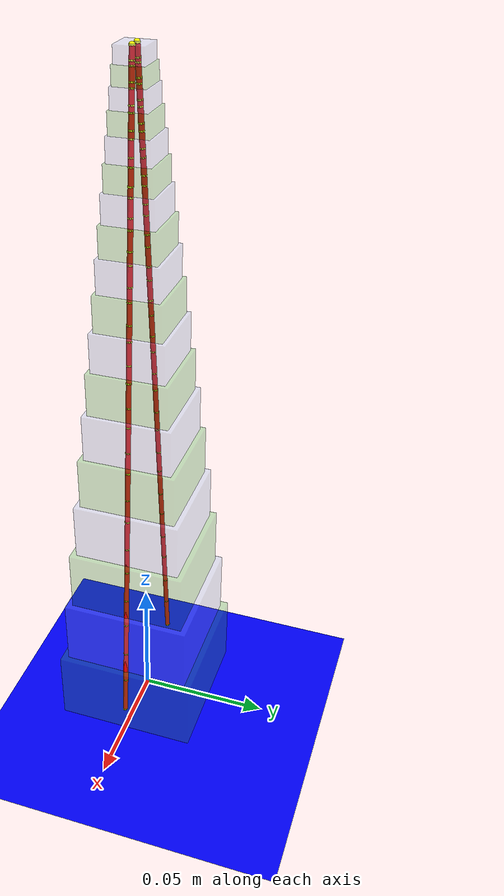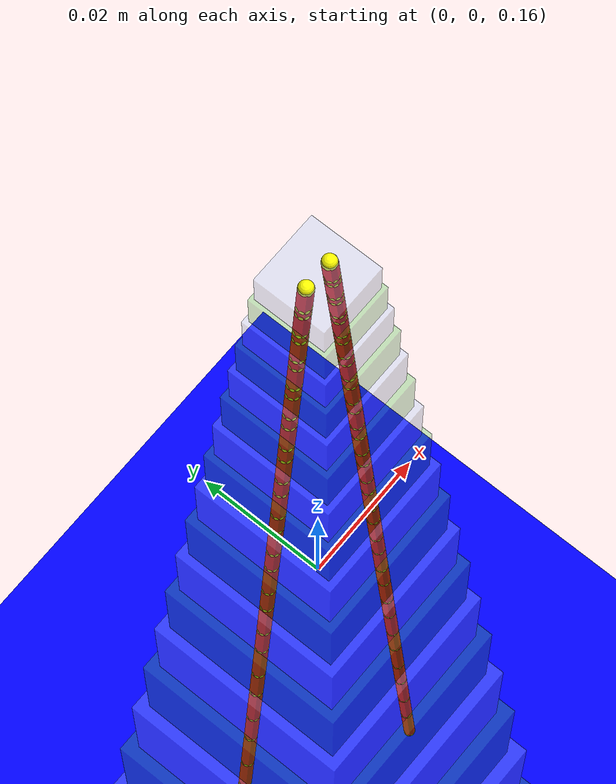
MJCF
<mujoco model="spiral_chain">
  <compiler/>
  <option timestep="0.005" gravity="0 0 -9.81" impratio="10" iterations="50"/>
  <default>
    <joint damping="0.2" stiffness="0.01" limited="true" range="-25.662747418161974 25.662747418161974" solimplimit="0.9 0.95 0.001" solreflimit="0.02 0.5" armature="0.01"/>
    <geom contype="1" conaffinity="0"/>
  </default>
  <worldbody>
    <body name="base" pos="0 0 0">
      <geom type="plane" size="2 2 0.1" rgba="0 0 1 0.6" contype="2" conaffinity="1"/>
      <!-- Der eigentliche Ketten-Root wird hier als Kind erzeugt -->
      <body name="seg_17" pos="0 0 0">
        <joint name="j_17" type="hinge" axis="0 1 0" pos="0 0 0" stiffness="0.05" damping="0.05" limited="true" range="-30.562747418161972 30.562747418161972" solimplimit="0.9 0.95 0.001" solreflimit="0.01 0.5"/>

        <!-- sichtbare, kollisionslose box-->
        <geom name="g_17" type="box"
              size="0.0271576 0.0271576 0.0147807"
              pos="0 0 0.0147807"
              rgba="0.2 0.7 0.2 0.3" contype="1" conaffinity="0" density="1100"/>

        <!-- Tendon-Sites: unten (in) / oben (out) auf äußerster Kante ±x -->
        <site name="site_in_17_0"  pos="0.0260474 0 0.00990682"  size="0.001" rgba="1 1 0 1"/>
        <site name="site_out_17_0" pos="0.0245672 0 0.0253007" size="0.001" rgba="1 1 0 1"/>
        <site name="site_in_17_1"  pos="-0.0260474 0 0.00990682"  size="0.001" rgba="1 1 0 1"/>
        <site name="site_out_17_1" pos="-0.0245672 0 0.0253007" size="0.001" rgba="1 1 0 1"/>

        <!-- Attachment-Punkt für das nächste Segment am Segmentende: -->
        <body name="seg_17_end" pos="0 0 0.0295615">
      <body name="seg_16" pos="0 0 0">
        <joint name="j_16" type="hinge" axis="0 1 0" pos="0 0 0" stiffness="0.05" damping="0.05" limited="true" range="-30.562747418161972 30.562747418161972" solimplimit="0.9 0.95 0.001" solreflimit="0.01 0.5"/>

        <!-- sichtbare, kollisionslose box-->
        <geom name="g_16" type="box"
              size="0.0245844 0.0245844 0.0133803"
              pos="0 0 0.0133803"
              rgba="0.6 0.75 0.95 0.3" contype="1" conaffinity="0" density="1100"/>

        <!-- Tendon-Sites: unten (in) / oben (out) auf äußerster Kante ±x -->
        <site name="site_in_16_0"  pos="0.0233053 0 0.00886387"  size="0.001" rgba="1 1 0 1"/>
        <site name="site_out_16_0" pos="0.0219505 0 0.0229536" size="0.001" rgba="1 1 0 1"/>
        <site name="site_in_16_1"  pos="-0.0233053 0 0.00886387"  size="0.001" rgba="1 1 0 1"/>
        <site name="site_out_16_1" pos="-0.0219505 0 0.0229536" size="0.001" rgba="1 1 0 1"/>

        <!-- Attachment-Punkt für das nächste Segment am Segmentende: -->
        <body name="seg_16_end" pos="0 0 0.0267606">
      <body name="seg_15" pos="0 0 0">
        <joint name="j_15" type="hinge" axis="0 1 0" pos="0 0 0" stiffness="0.05" damping="0.05" limited="true" range="-30.562747418161972 30.562747418161972" solimplimit="0.9 0.95 0.001" solreflimit="0.01 0.5"/>

        <!-- sichtbare, kollisionslose box-->
        <geom name="g_15" type="box"
              size="0.0222551 0.0222551 0.0121125"
              pos="0 0 0.0121125"
              rgba="0.2 0.7 0.2 0.3" contype="1" conaffinity="0" density="1100"/>

        <!-- Tendon-Sites: unten (in) / oben (out) auf äußerster Kante ±x -->
        <site name="site_in_15_0"  pos="0.0208229 0 0.00791974"  size="0.001" rgba="1 1 0 1"/>
        <site name="site_out_15_0" pos="0.0195816 0 0.020829" size="0.001" rgba="1 1 0 1"/>
        <site name="site_in_15_1"  pos="-0.0208229 0 0.00791974"  size="0.001" rgba="1 1 0 1"/>
        <site name="site_out_15_1" pos="-0.0195816 0 0.020829" size="0.001" rgba="1 1 0 1"/>

        <!-- Attachment-Punkt für das nächste Segment am Segmentende: -->
        <body name="seg_15_end" pos="0 0 0.024225">
      <body name="seg_14" pos="0 0 0">
        <joint name="j_14" type="hinge" axis="0 1 0" pos="0 0 0" stiffness="0.05" damping="0.05" limited="true" range="-30.562747418161972 30.562747418161972" solimplimit="0.9 0.95 0.001" solreflimit="0.01 0.5"/>

        <!-- sichtbare, kollisionslose box-->
        <geom name="g_14" type="box"
              size="0.0201465 0.0201465 0.0109649"
              pos="0 0 0.0109649"
              rgba="0.6 0.75 0.95 0.3" contype="1" conaffinity="0" density="1100"/>

        <!-- Tendon-Sites: unten (in) / oben (out) auf äußerster Kante ±x -->
        <site name="site_in_14_0"  pos="0.0185758 0 0.00706506"  size="0.001" rgba="1 1 0 1"/>
        <site name="site_out_14_0" pos="0.0174372 0 0.0189056" size="0.001" rgba="1 1 0 1"/>
        <site name="site_in_14_1"  pos="-0.0185758 0 0.00706506"  size="0.001" rgba="1 1 0 1"/>
        <site name="site_out_14_1" pos="-0.0174372 0 0.0189056" size="0.001" rgba="1 1 0 1"/>

        <!-- Attachment-Punkt für das nächste Segment am Segmentende: -->
        <body name="seg_14_end" pos="0 0 0.0219298">
      <body name="seg_13" pos="0 0 0">
        <joint name="j_13" type="hinge" axis="0 1 0" pos="0 0 0" stiffness="0.05" damping="0.05" limited="true" range="-30.562747418161972 30.562747418161972" solimplimit="0.9 0.95 0.001" solreflimit="0.01 0.5"/>

        <!-- sichtbare, kollisionslose box-->
        <geom name="g_13" type="box"
              size="0.0182376 0.0182376 0.00992598"
              pos="0 0 0.00992598"
              rgba="0.2 0.7 0.2 0.3" contype="1" conaffinity="0" density="1100"/>

        <!-- Tendon-Sites: unten (in) / oben (out) auf äußerster Kante ±x -->
        <site name="site_in_13_0"  pos="0.0165415 0 0.00629136"  size="0.001" rgba="1 1 0 1"/>
        <site name="site_out_13_0" pos="0.015496 0 0.0171644" size="0.001" rgba="1 1 0 1"/>
        <site name="site_in_13_1"  pos="-0.0165415 0 0.00629136"  size="0.001" rgba="1 1 0 1"/>
        <site name="site_out_13_1" pos="-0.015496 0 0.0171644" size="0.001" rgba="1 1 0 1"/>

        <!-- Attachment-Punkt für das nächste Segment am Segmentende: -->
        <body name="seg_13_end" pos="0 0 0.019852">
      <body name="seg_12" pos="0 0 0">
        <joint name="j_12" type="hinge" axis="0 1 0" pos="0 0 0" stiffness="0.05" damping="0.05" limited="true" range="-30.562747418161972 30.562747418161972" solimplimit="0.9 0.95 0.001" solreflimit="0.01 0.5"/>

        <!-- sichtbare, kollisionslose box-->
        <geom name="g_12" type="box"
              size="0.0165096 0.0165096 0.00898551"
              pos="0 0 0.00898551"
              rgba="0.6 0.75 0.95 0.3" contype="1" conaffinity="0" density="1100"/>

        <!-- Tendon-Sites: unten (in) / oben (out) auf äußerster Kante ±x -->
        <site name="site_in_12_0"  pos="0.0147 0 0.00559097"  size="0.001" rgba="1 1 0 1"/>
        <site name="site_out_12_0" pos="0.0137387 0 0.0155883" size="0.001" rgba="1 1 0 1"/>
        <site name="site_in_12_1"  pos="-0.0147 0 0.00559097"  size="0.001" rgba="1 1 0 1"/>
        <site name="site_out_12_1" pos="-0.0137387 0 0.0155883" size="0.001" rgba="1 1 0 1"/>

        <!-- Attachment-Punkt für das nächste Segment am Segmentende: -->
        <body name="seg_12_end" pos="0 0 0.017971">
      <body name="seg_11" pos="0 0 0">
        <joint name="j_11" type="hinge" axis="0 1 0" pos="0 0 0" stiffness="0.05" damping="0.05" limited="true" range="-30.562747418161972 30.562747418161972" solimplimit="0.9 0.95 0.001" solreflimit="0.01 0.5"/>

        <!-- sichtbare, kollisionslose box-->
        <geom name="g_11" type="box"
              size="0.0149454 0.0149454 0.00813415"
              pos="0 0 0.00813415"
              rgba="0.2 0.7 0.2 0.3" contype="1" conaffinity="0" density="1100"/>

        <!-- Tendon-Sites: unten (in) / oben (out) auf äußerster Kante ±x -->
        <site name="site_in_11_0"  pos="0.013033 0 0.00495694"  size="0.001" rgba="1 1 0 1"/>
        <site name="site_out_11_0" pos="0.012148 0 0.0141615" size="0.001" rgba="1 1 0 1"/>
        <site name="site_in_11_1"  pos="-0.013033 0 0.00495694"  size="0.001" rgba="1 1 0 1"/>
        <site name="site_out_11_1" pos="-0.012148 0 0.0141615" size="0.001" rgba="1 1 0 1"/>

        <!-- Attachment-Punkt für das nächste Segment am Segmentende: -->
        <body name="seg_11_end" pos="0 0 0.0162683">
      <body name="seg_10" pos="0 0 0">
        <joint name="j_10" type="hinge" axis="0 1 0" pos="0 0 0" stiffness="0.05" damping="0.05" limited="true" range="-30.562747418161972 30.562747418161972" solimplimit="0.9 0.95 0.001" solreflimit="0.01 0.5"/>

        <!-- sichtbare, kollisionslose box-->
        <geom name="g_10" type="box"
              size="0.0135293 0.0135293 0.00736345"
              pos="0 0 0.00736345"
              rgba="0.6 0.75 0.95 0.3" contype="1" conaffinity="0" density="1100"/>

        <!-- Tendon-Sites: unten (in) / oben (out) auf äußerster Kante ±x -->
        <site name="site_in_10_0"  pos="0.0115239 0 0.00438299"  size="0.001" rgba="1 1 0 1"/>
        <site name="site_out_10_0" pos="0.0107079 0 0.0128698" size="0.001" rgba="1 1 0 1"/>
        <site name="site_in_10_1"  pos="-0.0115239 0 0.00438299"  size="0.001" rgba="1 1 0 1"/>
        <site name="site_out_10_1" pos="-0.0107079 0 0.0128698" size="0.001" rgba="1 1 0 1"/>

        <!-- Attachment-Punkt für das nächste Segment am Segmentende: -->
        <body name="seg_10_end" pos="0 0 0.0147269">
      <body name="seg_9" pos="0 0 0">
        <joint name="j_9" type="hinge" axis="0 1 0" pos="0 0 0" stiffness="0.05" damping="0.05" limited="true" range="-30.562747418161972 30.562747418161972" solimplimit="0.9 0.95 0.001" solreflimit="0.01 0.5"/>

        <!-- sichtbare, kollisionslose box-->
        <geom name="g_9" type="box"
              size="0.0122474 0.0122474 0.00666578"
              pos="0 0 0.00666578"
              rgba="0.2 0.7 0.2 0.3" contype="1" conaffinity="0" density="1100"/>

        <!-- Tendon-Sites: unten (in) / oben (out) auf äußerster Kante ±x -->
        <site name="site_in_9_0"  pos="0.0101578 0 0.00386341"  size="0.001" rgba="1 1 0 1"/>
        <site name="site_out_9_0" pos="0.00940428 0 0.0117006" size="0.001" rgba="1 1 0 1"/>
        <site name="site_in_9_1"  pos="-0.0101578 0 0.00386341"  size="0.001" rgba="1 1 0 1"/>
        <site name="site_out_9_1" pos="-0.00940428 0 0.0117006" size="0.001" rgba="1 1 0 1"/>

        <!-- Attachment-Punkt für das nächste Segment am Segmentende: -->
        <body name="seg_9_end" pos="0 0 0.0133316">
      <body name="seg_8" pos="0 0 0">
        <joint name="j_8" type="hinge" axis="0 1 0" pos="0 0 0" stiffness="0.05" damping="0.05" limited="true" range="-30.562747418161972 30.562747418161972" solimplimit="0.9 0.95 0.001" solreflimit="0.01 0.5"/>

        <!-- sichtbare, kollisionslose box-->
        <geom name="g_8" type="box"
              size="0.011087 0.011087 0.00603421"
              pos="0 0 0.00603421"
              rgba="0.6 0.75 0.95 0.3" contype="1" conaffinity="0" density="1100"/>

        <!-- Tendon-Sites: unten (in) / oben (out) auf äußerster Kante ±x -->
        <site name="site_in_8_0"  pos="0.00892119 0 0.00339307"  size="0.001" rgba="1 1 0 1"/>
        <site name="site_out_8_0" pos="0.00822417 0 0.0106421" size="0.001" rgba="1 1 0 1"/>
        <site name="site_in_8_1"  pos="-0.00892119 0 0.00339307"  size="0.001" rgba="1 1 0 1"/>
        <site name="site_out_8_1" pos="-0.00822417 0 0.0106421" size="0.001" rgba="1 1 0 1"/>

        <!-- Attachment-Punkt für das nächste Segment am Segmentende: -->
        <body name="seg_8_end" pos="0 0 0.0120684">
      <body name="seg_7" pos="0 0 0">
        <joint name="j_7" type="hinge" axis="0 1 0" pos="0 0 0" stiffness="0.05" damping="0.05" limited="true" range="-30.562747418161972 30.562747418161972" solimplimit="0.9 0.95 0.001" solreflimit="0.01 0.5"/>

        <!-- sichtbare, kollisionslose box-->
        <geom name="g_7" type="box"
              size="0.0100365 0.0100365 0.00546248"
              pos="0 0 0.00546248"
              rgba="0.2 0.7 0.2 0.3" contype="1" conaffinity="0" density="1100"/>

        <!-- Tendon-Sites: unten (in) / oben (out) auf äußerster Kante ±x -->
        <site name="site_in_7_0"  pos="0.00780171 0 0.00296728"  size="0.001" rgba="1 1 0 1"/>
        <site name="site_out_7_0" pos="0.00715588 0 0.00968389" size="0.001" rgba="1 1 0 1"/>
        <site name="site_in_7_1"  pos="-0.00780171 0 0.00296728"  size="0.001" rgba="1 1 0 1"/>
        <site name="site_out_7_1" pos="-0.00715588 0 0.00968389" size="0.001" rgba="1 1 0 1"/>

        <!-- Attachment-Punkt für das nächste Segment am Segmentende: -->
        <body name="seg_7_end" pos="0 0 0.010925">
      <body name="seg_6" pos="0 0 0">
        <joint name="j_6" type="hinge" axis="0 1 0" pos="0 0 0" stiffness="0.05" damping="0.05" limited="true" range="-30.562747418161972 30.562747418161972" solimplimit="0.9 0.95 0.001" solreflimit="0.01 0.5"/>

        <!-- sichtbare, kollisionslose box-->
        <geom name="g_6" type="box"
              size="0.0090856 0.0090856 0.00494492"
              pos="0 0 0.00494492"
              rgba="0.6 0.75 0.95 0.3" contype="1" conaffinity="0" density="1100"/>

        <!-- Tendon-Sites: unten (in) / oben (out) auf äußerster Kante ±x -->
        <site name="site_in_6_0"  pos="0.00678829 0 0.00258184"  size="0.001" rgba="1 1 0 1"/>
        <site name="site_out_6_0" pos="0.00618881 0 0.00881649" size="0.001" rgba="1 1 0 1"/>
        <site name="site_in_6_1"  pos="-0.00678829 0 0.00258184"  size="0.001" rgba="1 1 0 1"/>
        <site name="site_out_6_1" pos="-0.00618881 0 0.00881649" size="0.001" rgba="1 1 0 1"/>

        <!-- Attachment-Punkt für das nächste Segment am Segmentende: -->
        <body name="seg_6_end" pos="0 0 0.00988983">
      <body name="seg_5" pos="0 0 0">
        <joint name="j_5" type="hinge" axis="0 1 0" pos="0 0 0" stiffness="0.05" damping="0.05" limited="true" range="-30.562747418161972 30.562747418161972" solimplimit="0.9 0.95 0.001" solreflimit="0.01 0.5"/>

        <!-- sichtbare, kollisionslose box-->
        <geom name="g_5" type="box"
              size="0.00822476 0.00822476 0.00447639"
              pos="0 0 0.00447639"
              rgba="0.2 0.7 0.2 0.3" contype="1" conaffinity="0" density="1100"/>

        <!-- Tendon-Sites: unten (in) / oben (out) auf äußerster Kante ±x -->
        <site name="site_in_5_0"  pos="0.0058709 0 0.00223292"  size="0.001" rgba="1 1 0 1"/>
        <site name="site_out_5_0" pos="0.00531336 0 0.00803128" size="0.001" rgba="1 1 0 1"/>
        <site name="site_in_5_1"  pos="-0.0058709 0 0.00223292"  size="0.001" rgba="1 1 0 1"/>
        <site name="site_out_5_1" pos="-0.00531336 0 0.00803128" size="0.001" rgba="1 1 0 1"/>

        <!-- Attachment-Punkt für das nächste Segment am Segmentende: -->
        <body name="seg_5_end" pos="0 0 0.00895279">
      <body name="seg_4" pos="0 0 0">
        <joint name="j_4" type="hinge" axis="0 1 0" pos="0 0 0" stiffness="0.05" damping="0.05" limited="true" range="-30.562747418161972 30.562747418161972" solimplimit="0.9 0.95 0.001" solreflimit="0.01 0.5"/>

        <!-- sichtbare, kollisionslose box-->
        <geom name="g_4" type="box"
              size="0.00744548 0.00744548 0.00405226"
              pos="0 0 0.00405226"
              rgba="0.6 0.75 0.95 0.3" contype="1" conaffinity="0" density="1100"/>

        <!-- Tendon-Sites: unten (in) / oben (out) auf äußerster Kante ±x -->
        <site name="site_in_4_0"  pos="0.00504042 0 0.00191706"  size="0.001" rgba="1 1 0 1"/>
        <site name="site_out_4_0" pos="0.00452087 0 0.00732046" size="0.001" rgba="1 1 0 1"/>
        <site name="site_in_4_1"  pos="-0.00504042 0 0.00191706"  size="0.001" rgba="1 1 0 1"/>
        <site name="site_out_4_1" pos="-0.00452087 0 0.00732046" size="0.001" rgba="1 1 0 1"/>

        <!-- Attachment-Punkt für das nächste Segment am Segmentende: -->
        <body name="seg_4_end" pos="0 0 0.00810453">
      <body name="seg_3" pos="0 0 0">
        <joint name="j_3" type="hinge" axis="0 1 0" pos="0 0 0" stiffness="0.05" damping="0.05" limited="true" range="-30.562747418161972 30.562747418161972" solimplimit="0.9 0.95 0.001" solreflimit="0.01 0.5"/>

        <!-- sichtbare, kollisionslose box-->
        <geom name="g_3" type="box"
              size="0.00674003 0.00674003 0.00366832"
              pos="0 0 0.00366832"
              rgba="0.2 0.7 0.2 0.3" contype="1" conaffinity="0" density="1100"/>

        <!-- Tendon-Sites: unten (in) / oben (out) auf äußerster Kante ±x -->
        <site name="site_in_3_0"  pos="0.00428864 0 0.00163113"  size="0.001" rgba="1 1 0 1"/>
        <site name="site_out_3_0" pos="0.00380346 0 0.006677" size="0.001" rgba="1 1 0 1"/>
        <site name="site_in_3_1"  pos="-0.00428864 0 0.00163113"  size="0.001" rgba="1 1 0 1"/>
        <site name="site_out_3_1" pos="-0.00380346 0 0.006677" size="0.001" rgba="1 1 0 1"/>

        <!-- Attachment-Punkt für das nächste Segment am Segmentende: -->
        <body name="seg_3_end" pos="0 0 0.00733664">
      <body name="seg_2" pos="0 0 0">
        <joint name="j_2" type="hinge" axis="0 1 0" pos="0 0 0" stiffness="0.05" damping="0.05" limited="true" range="-30.562747418161972 30.562747418161972" solimplimit="0.9 0.95 0.001" solreflimit="0.01 0.5"/>

        <!-- sichtbare, kollisionslose box-->
        <geom name="g_2" type="box"
              size="0.00610142 0.00610142 0.00332075"
              pos="0 0 0.00332075"
              rgba="0.6 0.75 0.95 0.3" contype="1" conaffinity="0" density="1100"/>

        <!-- Tendon-Sites: unten (in) / oben (out) auf äußerster Kante ±x -->
        <site name="site_in_2_0"  pos="0.00360808 0 0.00137229"  size="0.001" rgba="1 1 0 1"/>
        <site name="site_out_2_0" pos="0.00315402 0 0.0060945" size="0.001" rgba="1 1 0 1"/>
        <site name="site_in_2_1"  pos="-0.00360808 0 0.00137229"  size="0.001" rgba="1 1 0 1"/>
        <site name="site_out_2_1" pos="-0.00315402 0 0.0060945" size="0.001" rgba="1 1 0 1"/>

        <!-- Attachment-Punkt für das nächste Segment am Segmentende: -->
        <body name="seg_2_end" pos="0 0 0.0066415">
      <body name="seg_1" pos="0 0 0">
        <joint name="j_1" type="hinge" axis="0 1 0" pos="0 0 0" stiffness="0.05" damping="0.05" limited="true" range="-30.562747418161972 30.562747418161972" solimplimit="0.9 0.95 0.001" solreflimit="0.01 0.5"/>

        <!-- sichtbare, kollisionslose box-->
        <geom name="g_1" type="box"
              size="0.00552333 0.00552333 0.00300612"
              pos="0 0 0.00300612"
              rgba="0.2 0.7 0.2 0.3" contype="1" conaffinity="0" density="1100"/>

        <!-- Tendon-Sites: unten (in) / oben (out) auf äußerster Kante ±x -->
        <site name="site_in_1_0"  pos="0.002992 0 0.00113797"  size="0.001" rgba="1 1 0 1"/>
        <site name="site_out_1_0" pos="0.00256612 0 0.00556719" size="0.001" rgba="1 1 0 1"/>
        <site name="site_in_1_1"  pos="-0.002992 0 0.00113797"  size="0.001" rgba="1 1 0 1"/>
        <site name="site_out_1_1" pos="-0.00256612 0 0.00556719" size="0.001" rgba="1 1 0 1"/>

        <!-- Attachment-Punkt für das nächste Segment am Segmentende: -->
        <body name="seg_1_end" pos="0 0 0.00601223">
      <body name="seg_0" pos="0 0 0">
        <joint name="j_0" type="hinge" axis="0 1 0" pos="0 0 0" stiffness="0.05" damping="0.05" limited="true" range="-30.562747418161972 30.562747418161972" solimplimit="0.9 0.95 0.001" solreflimit="0.01 0.5"/>

        <!-- sichtbare, kollisionslose box-->
        <geom name="g_0" type="box"
              size="0.005 0.005 0.00272129"
              pos="0 0 0.00272129"
              rgba="0.6 0.75 0.95 0.3" contype="1" conaffinity="0" density="1100"/>

        <!-- Tendon-Sites: unten (in) / oben (out) auf äußerster Kante ±x -->
        <site name="site_in_0_0"  pos="0.0024343 0 0.000925856"  size="0.001" rgba="1 1 0 1"/>
        <site name="site_out_0_0" pos="0.00203392 0 0.00508984" size="0.001" rgba="1 1 0 1"/>
        <site name="site_in_0_1"  pos="-0.0024343 0 0.000925856"  size="0.001" rgba="1 1 0 1"/>
        <site name="site_out_0_1" pos="-0.00203392 0 0.00508984" size="0.001" rgba="1 1 0 1"/>

        <!-- Attachment-Punkt für das nächste Segment am Segmentende: -->
        <body name="seg_0_end" pos="0 0 0.00544258">
        </body>
      </body>
        </body>
      </body>
        </body>
      </body>
        </body>
      </body>
        </body>
      </body>
        </body>
      </body>
        </body>
      </body>
        </body>
      </body>
        </body>
      </body>
        </body>
      </body>
        </body>
      </body>
        </body>
      </body>
        </body>
      </body>
        </body>
      </body>
        </body>
      </body>
        </body>
      </body>
        </body>
      </body>
        </body>
      </body>
    </body>
  </worldbody>
  <tendon>
    <spatial name="tendon_0" width="0.001" rgba="1 0 0 1" frictionloss="0.1" stiffness="50">
      <site site="site_in_17_0"/>
      <site site="site_out_17_0"/>
      <site site="site_in_16_0"/>
      <site site="site_out_16_0"/>
      <site site="site_in_15_0"/>
      <site site="site_out_15_0"/>
      <site site="site_in_14_0"/>
      <site site="site_out_14_0"/>
      <site site="site_in_13_0"/>
      <site site="site_out_13_0"/>
      <site site="site_in_12_0"/>
      <site site="site_out_12_0"/>
      <site site="site_in_11_0"/>
      <site site="site_out_11_0"/>
      <site site="site_in_10_0"/>
      <site site="site_out_10_0"/>
      <site site="site_in_9_0"/>
      <site site="site_out_9_0"/>
      <site site="site_in_8_0"/>
      <site site="site_out_8_0"/>
      <site site="site_in_7_0"/>
      <site site="site_out_7_0"/>
      <site site="site_in_6_0"/>
      <site site="site_out_6_0"/>
      <site site="site_in_5_0"/>
      <site site="site_out_5_0"/>
      <site site="site_in_4_0"/>
      <site site="site_out_4_0"/>
      <site site="site_in_3_0"/>
      <site site="site_out_3_0"/>
      <site site="site_in_2_0"/>
      <site site="site_out_2_0"/>
      <site site="site_in_1_0"/>
      <site site="site_out_1_0"/>
      <site site="site_in_0_0"/>
      <site site="site_out_0_0"/>
    </spatial>
    <spatial name="tendon_1" width="0.001" rgba="1 0 0 1" frictionloss="0.1" stiffness="50">
      <site site="site_in_17_1"/>
      <site site="site_out_17_1"/>
      <site site="site_in_16_1"/>
      <site site="site_out_16_1"/>
      <site site="site_in_15_1"/>
      <site site="site_out_15_1"/>
      <site site="site_in_14_1"/>
      <site site="site_out_14_1"/>
      <site site="site_in_13_1"/>
      <site site="site_out_13_1"/>
      <site site="site_in_12_1"/>
      <site site="site_out_12_1"/>
      <site site="site_in_11_1"/>
      <site site="site_out_11_1"/>
      <site site="site_in_10_1"/>
      <site site="site_out_10_1"/>
      <site site="site_in_9_1"/>
      <site site="site_out_9_1"/>
      <site site="site_in_8_1"/>
      <site site="site_out_8_1"/>
      <site site="site_in_7_1"/>
      <site site="site_out_7_1"/>
      <site site="site_in_6_1"/>
      <site site="site_out_6_1"/>
      <site site="site_in_5_1"/>
      <site site="site_out_5_1"/>
      <site site="site_in_4_1"/>
      <site site="site_out_4_1"/>
      <site site="site_in_3_1"/>
      <site site="site_out_3_1"/>
      <site site="site_in_2_1"/>
      <site site="site_out_2_1"/>
      <site site="site_in_1_1"/>
      <site site="site_out_1_1"/>
      <site site="site_in_0_1"/>
      <site site="site_out_0_1"/>
    </spatial>
  </tendon>
  <actuator>
    <position name="tendon_act_0" tendon="tendon_0" kp="200.0" forcerange="-200 0" ctrlrange="0.00 0.5"/>
    <position name="tendon_act_1" tendon="tendon_1" kp="200.0" forcerange="-200 0" ctrlrange="0.00 0.5"/>
  </actuator>
  <sensor>
    <tendonpos name="tendon0_pos" tendon="tendon_0"/>
    <tendonvel name="tendon0_vel" tendon="tendon_0"/>
    <tendonpos name="tendon1_pos" tendon="tendon_1"/>
    <tendonvel name="tendon1_vel" tendon="tendon_1"/>
  </sensor>

</mujoco>
